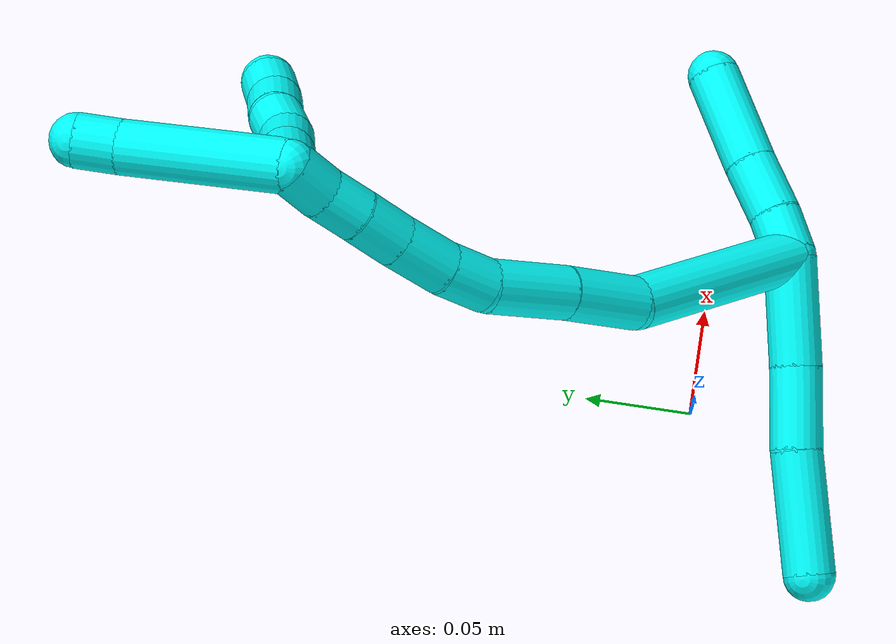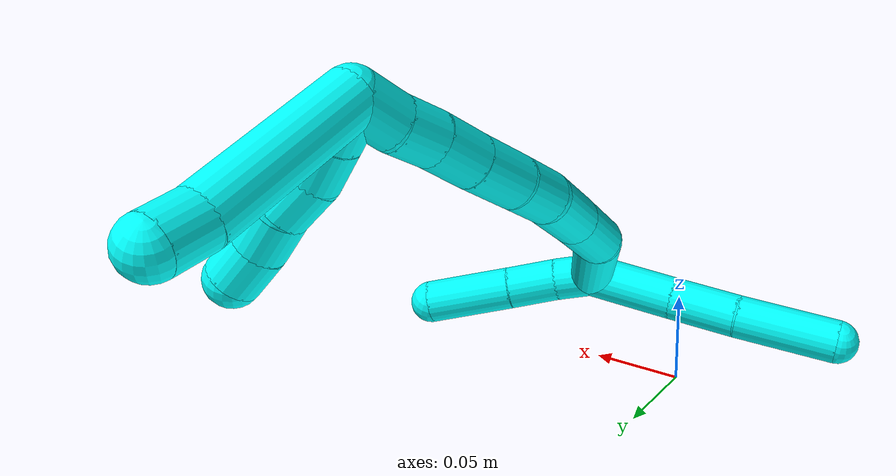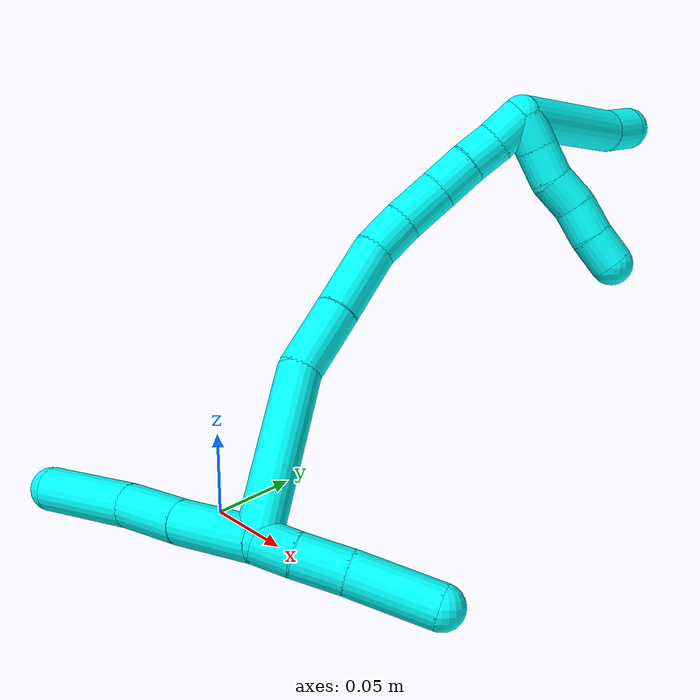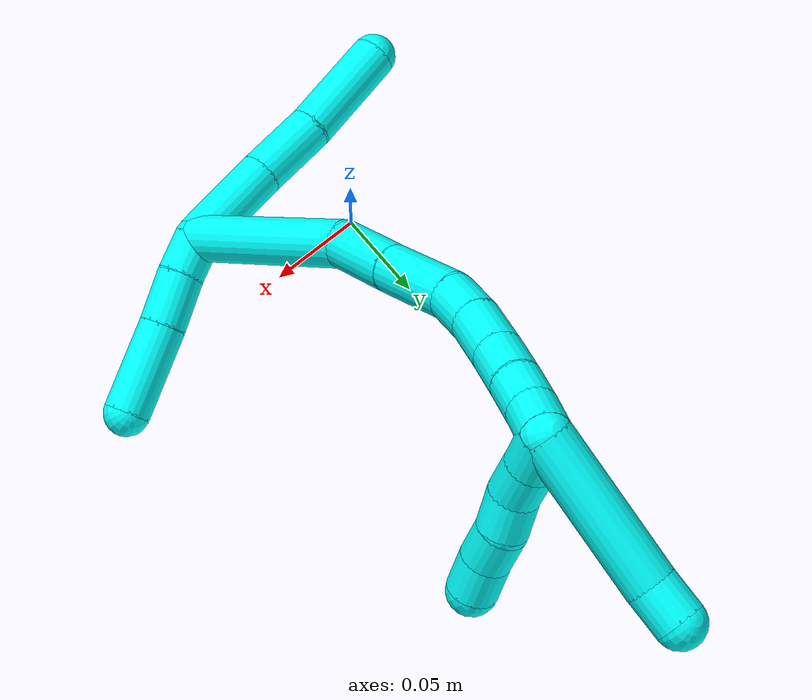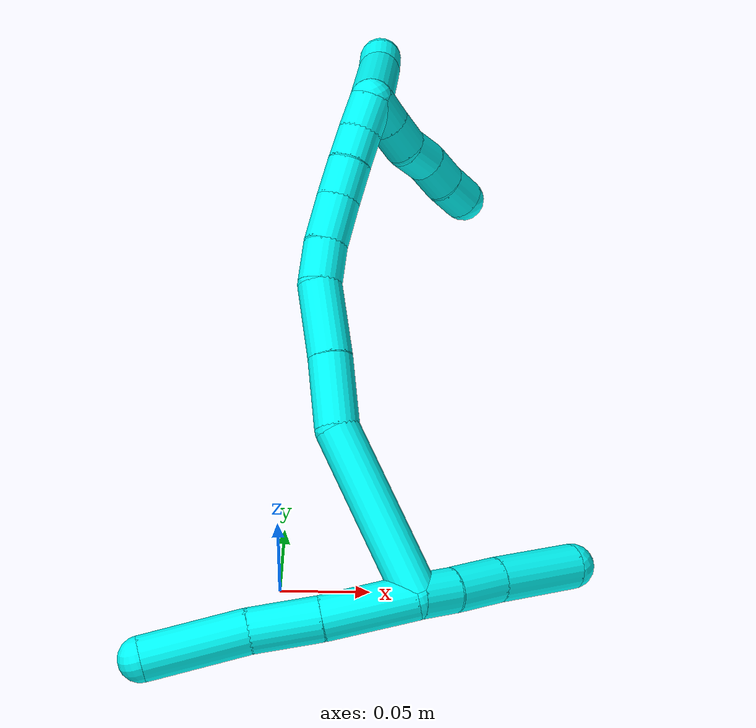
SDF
<sdf version="1.7">
 <world name="default">
  <model name="3">
   <static>0</static>
   <link name="3">
    <collision name="collision-cylinder-e_1_2_8">
     <pose>-0.025679 -0.001969 0.003676 0.491753 -1.40979 -0.420655</pose>
     <geometry><cylinder><radius>0.0125</radius><length>0.052032</length></cylinder></geometry>
     <surface>
      <friction><ode><mu>1.16</mu><mu2>1.16</mu2><slip1>0</slip1><slip2>0</slip2></ode></friction>
      <contact><ode><kp>1e+06</kp><kd>1</kd><max_vel>0</max_vel><min_depth>0.001</min_depth></ode></contact>
     </surface>
    </collision>
    <visual name="visual-cylinder-e_1_2_8">
     <pose>-0.025679 -0.001969 0.003676 0.491753 -1.40979 -0.420655</pose>
     <geometry><cylinder><radius>0.0125</radius><length>0.052032</length></cylinder></geometry>
     <material><ambient>0.003922 1 0.996078 1</ambient></material>
    </visual>
    <collision name="collision-cylinder-e_2_8_9">
     <pose>-0.070645 -0.004791 0.011083 0.224665 -1.37494 -0.184724</pose>
     <geometry><cylinder><radius>0.0125</radius><length>0.039325</length></cylinder></geometry>
     <surface>
      <friction><ode><mu>1.16</mu><mu2>1.16</mu2><slip1>0</slip1><slip2>0</slip2></ode></friction>
      <contact><ode><kp>1e+06</kp><kd>1</kd><max_vel>0</max_vel><min_depth>0.001</min_depth></ode></contact>
     </surface>
    </collision>
    <visual name="visual-cylinder-e_2_8_9">
     <pose>-0.070645 -0.004791 0.011083 0.224665 -1.37494 -0.184724</pose>
     <geometry><cylinder><radius>0.0125</radius><length>0.039325</length></cylinder></geometry>
     <material><ambient>0.003922 1 0.996078 1</ambient></material>
    </visual>
    <collision name="collision-cylinder-e_3_9_6">
     <pose>-0.118756 -0.009326 0.018731 0.754531 -1.38638 -0.635993</pose>
     <geometry><cylinder><radius>0.0125</radius><length>0.058643</length></cylinder></geometry>
     <surface>
      <friction><ode><mu>1.16</mu><mu2>1.16</mu2><slip1>0</slip1><slip2>0</slip2></ode></friction>
      <contact><ode><kp>1e+06</kp><kd>1</kd><max_vel>0</max_vel><min_depth>0.001</min_depth></ode></contact>
     </surface>
    </collision>
    <visual name="visual-cylinder-e_3_9_6">
     <pose>-0.118756 -0.009326 0.018731 0.754531 -1.38638 -0.635993</pose>
     <geometry><cylinder><radius>0.0125</radius><length>0.058643</length></cylinder></geometry>
     <material><ambient>0.003922 1 0.996078 1</ambient></material>
    </visual>
    <collision name="collision-cylinder-e_1_2_10">
     <pose>0.009214 0.004499 -0.003556 -2.23969 1.01405 -1.7076</pose>
     <geometry><cylinder><radius>0.0125</radius><length>0.021706</length></cylinder></geometry>
     <surface>
      <friction><ode><mu>1.16</mu><mu2>1.16</mu2><slip1>0</slip1><slip2>0</slip2></ode></friction>
      <contact><ode><kp>1e+06</kp><kd>1</kd><max_vel>0</max_vel><min_depth>0.001</min_depth></ode></contact>
     </surface>
    </collision>
    <visual name="visual-cylinder-e_1_2_10">
     <pose>0.009214 0.004499 -0.003556 -2.23969 1.01405 -1.7076</pose>
     <geometry><cylinder><radius>0.0125</radius><length>0.021706</length></cylinder></geometry>
     <material><ambient>0.003922 1 0.996078 1</ambient></material>
    </visual>
    <collision name="collision-cylinder-e_2_10_11">
     <pose>0.030079 0.016064 -0.011526 -2.12907 0.950077 -1.49572</pose>
     <geometry><cylinder><radius>0.0125</radius><length>0.028646</length></cylinder></geometry>
     <surface>
      <friction><ode><mu>1.16</mu><mu2>1.16</mu2><slip1>0</slip1><slip2>0</slip2></ode></friction>
      <contact><ode><kp>1e+06</kp><kd>1</kd><max_vel>0</max_vel><min_depth>0.001</min_depth></ode></contact>
     </surface>
    </collision>
    <visual name="visual-cylinder-e_2_10_11">
     <pose>0.030079 0.016064 -0.011526 -2.12907 0.950077 -1.49572</pose>
     <geometry><cylinder><radius>0.0125</radius><length>0.028646</length></cylinder></geometry>
     <material><ambient>0.003922 1 0.996078 1</ambient></material>
    </visual>
    <collision name="collision-cylinder-e_3_11_5">
     <pose>0.062173 0.034412 -0.024367 -2.21242 0.96758 -1.61806</pose>
     <geometry><cylinder><radius>0.0125</radius><length>0.049648</length></cylinder></geometry>
     <surface>
      <friction><ode><mu>1.16</mu><mu2>1.16</mu2><slip1>0</slip1><slip2>0</slip2></ode></friction>
      <contact><ode><kp>1e+06</kp><kd>1</kd><max_vel>0</max_vel><min_depth>0.001</min_depth></ode></contact>
     </surface>
    </collision>
    <visual name="visual-cylinder-e_3_11_5">
     <pose>0.062173 0.034412 -0.024367 -2.21242 0.96758 -1.61806</pose>
     <geometry><cylinder><radius>0.0125</radius><length>0.049648</length></cylinder></geometry>
     <material><ambient>0.003922 1 0.996078 1</ambient></material>
    </visual>
    <collision name="collision-cylinder-e_1_2_12">
     <pose>-0.006423 0.024094 0.043623 -0.504615 -0.128187 0.033089</pose>
     <geometry><cylinder><radius>0.0125</radius><length>0.100494</length></cylinder></geometry>
     <surface>
      <friction><ode><mu>1.16</mu><mu2>1.16</mu2><slip1>0</slip1><slip2>0</slip2></ode></friction>
      <contact><ode><kp>1e+06</kp><kd>1</kd><max_vel>0</max_vel><min_depth>0.001</min_depth></ode></contact>
     </surface>
    </collision>
    <visual name="visual-cylinder-e_1_2_12">
     <pose>-0.006423 0.024094 0.043623 -0.504615 -0.128187 0.033089</pose>
     <geometry><cylinder><radius>0.0125</radius><length>0.100494</length></cylinder></geometry>
     <material><ambient>0.003922 1 0.996078 1</ambient></material>
    </visual>
    <collision name="collision-cylinder-e_2_12_13">
     <pose>-0.008764 0.059503 0.103603 -0.605213 0.202464 -0.063404</pose>
     <geometry><cylinder><radius>0.0125</radius><length>0.040608</length></cylinder></geometry>
     <surface>
      <friction><ode><mu>1.16</mu><mu2>1.16</mu2><slip1>0</slip1><slip2>0</slip2></ode></friction>
      <contact><ode><kp>1e+06</kp><kd>1</kd><max_vel>0</max_vel><min_depth>0.001</min_depth></ode></contact>
     </surface>
    </collision>
    <visual name="visual-cylinder-e_2_12_13">
     <pose>-0.008764 0.059503 0.103603 -0.605213 0.202464 -0.063404</pose>
     <geometry><cylinder><radius>0.0125</radius><length>0.040608</length></cylinder></geometry>
     <material><ambient>0.003922 1 0.996078 1</ambient></material>
    </visual>
    <collision name="collision-cylinder-e_3_13_14">
     <pose>-0.001374 0.083444 0.137129 -0.634045 0.153924 -0.05059</pose>
     <geometry><cylinder><radius>0.0125</radius><length>0.043134</length></cylinder></geometry>
     <surface>
      <friction><ode><mu>1.16</mu><mu2>1.16</mu2><slip1>0</slip1><slip2>0</slip2></ode></friction>
      <contact><ode><kp>1e+06</kp><kd>1</kd><max_vel>0</max_vel><min_depth>0.001</min_depth></ode></contact>
     </surface>
    </collision>
    <visual name="visual-cylinder-e_3_13_14">
     <pose>-0.001374 0.083444 0.137129 -0.634045 0.153924 -0.05059</pose>
     <geometry><cylinder><radius>0.0125</radius><length>0.043134</length></cylinder></geometry>
     <material><ambient>0.003922 1 0.996078 1</ambient></material>
    </visual>
    <collision name="collision-cylinder-e_4_14_15">
     <pose>0.00679 0.103128 0.162687 -0.699561 0.417076 -0.15408</pose>
     <geometry><cylinder><radius>0.0125</radius><length>0.023982</length></cylinder></geometry>
     <surface>
      <friction><ode><mu>1.16</mu><mu2>1.16</mu2><slip1>0</slip1><slip2>0</slip2></ode></friction>
      <contact><ode><kp>1e+06</kp><kd>1</kd><max_vel>0</max_vel><min_depth>0.001</min_depth></ode></contact>
     </surface>
    </collision>
    <visual name="visual-cylinder-e_4_14_15">
     <pose>0.00679 0.103128 0.162687 -0.699561 0.417076 -0.15408</pose>
     <geometry><cylinder><radius>0.0125</radius><length>0.023982</length></cylinder></geometry>
     <material><ambient>0.003922 1 0.996078 1</ambient></material>
    </visual>
    <collision name="collision-cylinder-e_5_15_16">
     <pose>0.018716 0.11779 0.180039 -0.703408 0.541495 -0.203009</pose>
     <geometry><cylinder><radius>0.0125</radius><length>0.027432</length></cylinder></geometry>
     <surface>
      <friction><ode><mu>1.16</mu><mu2>1.16</mu2><slip1>0</slip1><slip2>0</slip2></ode></friction>
      <contact><ode><kp>1e+06</kp><kd>1</kd><max_vel>0</max_vel><min_depth>0.001</min_depth></ode></contact>
     </surface>
    </collision>
    <visual name="visual-cylinder-e_5_15_16">
     <pose>0.018716 0.11779 0.180039 -0.703408 0.541495 -0.203009</pose>
     <geometry><cylinder><radius>0.0125</radius><length>0.027432</length></cylinder></geometry>
     <material><ambient>0.003922 1 0.996078 1</ambient></material>
    </visual>
    <collision name="collision-cylinder-e_6_16_17">
     <pose>0.032053 0.131369 0.196615 -0.665633 0.574656 -0.203591</pose>
     <geometry><cylinder><radius>0.0125</radius><length>0.023059</length></cylinder></geometry>
     <surface>
      <friction><ode><mu>1.16</mu><mu2>1.16</mu2><slip1>0</slip1><slip2>0</slip2></ode></friction>
      <contact><ode><kp>1e+06</kp><kd>1</kd><max_vel>0</max_vel><min_depth>0.001</min_depth></ode></contact>
     </surface>
    </collision>
    <visual name="visual-cylinder-e_6_16_17">
     <pose>0.032053 0.131369 0.196615 -0.665633 0.574656 -0.203591</pose>
     <geometry><cylinder><radius>0.0125</radius><length>0.023059</length></cylinder></geometry>
     <material><ambient>0.003922 1 0.996078 1</ambient></material>
    </visual>
    <collision name="collision-cylinder-e_7_17_18">
     <pose>0.043795 0.143127 0.210394 -0.753169 0.574762 -0.232709</pose>
     <geometry><cylinder><radius>0.0125</radius><length>0.020144</length></cylinder></geometry>
     <surface>
      <friction><ode><mu>1.16</mu><mu2>1.16</mu2><slip1>0</slip1><slip2>0</slip2></ode></friction>
      <contact><ode><kp>1e+06</kp><kd>1</kd><max_vel>0</max_vel><min_depth>0.001</min_depth></ode></contact>
     </surface>
    </collision>
    <visual name="visual-cylinder-e_7_17_18">
     <pose>0.043795 0.143127 0.210394 -0.753169 0.574762 -0.232709</pose>
     <geometry><cylinder><radius>0.0125</radius><length>0.020144</length></cylinder></geometry>
     <material><ambient>0.003922 1 0.996078 1</ambient></material>
    </visual>
    <collision name="collision-cylinder-e_8_18_1">
     <pose>0.055593 0.153572 0.223638 -0.582598 0.64095 -0.198383</pose>
     <geometry><cylinder><radius>0.0125</radius><length>0.021148</length></cylinder></geometry>
     <surface>
      <friction><ode><mu>1.16</mu><mu2>1.16</mu2><slip1>0</slip1><slip2>0</slip2></ode></friction>
      <contact><ode><kp>1e+06</kp><kd>1</kd><max_vel>0</max_vel><min_depth>0.001</min_depth></ode></contact>
     </surface>
    </collision>
    <visual name="visual-cylinder-e_8_18_1">
     <pose>0.055593 0.153572 0.223638 -0.582598 0.64095 -0.198383</pose>
     <geometry><cylinder><radius>0.0125</radius><length>0.021148</length></cylinder></geometry>
     <material><ambient>0.003922 1 0.996078 1</ambient></material>
    </visual>
    <collision name="collision-cylinder-e_1_1_19">
     <pose>0.064039 0.162204 0.221786 -2.7233 0.213968 -0.936844</pose>
     <geometry><cylinder><radius>0.0125</radius><length>0.02</length></cylinder></geometry>
     <surface>
      <friction><ode><mu>1.16</mu><mu2>1.16</mu2><slip1>0</slip1><slip2>0</slip2></ode></friction>
      <contact><ode><kp>1e+06</kp><kd>1</kd><max_vel>0</max_vel><min_depth>0.001</min_depth></ode></contact>
     </surface>
    </collision>
    <visual name="visual-cylinder-e_1_1_19">
     <pose>0.064039 0.162204 0.221786 -2.7233 0.213968 -0.936844</pose>
     <geometry><cylinder><radius>0.0125</radius><length>0.02</length></cylinder></geometry>
     <material><ambient>0.003922 1 0.996078 1</ambient></material>
    </visual>
    <collision name="collision-cylinder-e_2_19_20">
     <pose>0.068615 0.169861 0.20389 -2.75144 0.247776 -1.1247</pose>
     <geometry><cylinder><radius>0.0125</radius><length>0.02</length></cylinder></geometry>
     <surface>
      <friction><ode><mu>1.16</mu><mu2>1.16</mu2><slip1>0</slip1><slip2>0</slip2></ode></friction>
      <contact><ode><kp>1e+06</kp><kd>1</kd><max_vel>0</max_vel><min_depth>0.001</min_depth></ode></contact>
     </surface>
    </collision>
    <visual name="visual-cylinder-e_2_19_20">
     <pose>0.068615 0.169861 0.20389 -2.75144 0.247776 -1.1247</pose>
     <geometry><cylinder><radius>0.0125</radius><length>0.02</length></cylinder></geometry>
     <material><ambient>0.003922 1 0.996078 1</ambient></material>
    </visual>
    <collision name="collision-cylinder-e_3_20_21">
     <pose>0.07518 0.178912 0.187554 -2.51249 0.423835 -1.16852</pose>
     <geometry><cylinder><radius>0.0125</radius><length>0.02</length></cylinder></geometry>
     <surface>
      <friction><ode><mu>1.16</mu><mu2>1.16</mu2><slip1>0</slip1><slip2>0</slip2></ode></friction>
      <contact><ode><kp>1e+06</kp><kd>1</kd><max_vel>0</max_vel><min_depth>0.001</min_depth></ode></contact>
     </surface>
    </collision>
    <visual name="visual-cylinder-e_3_20_21">
     <pose>0.07518 0.178912 0.187554 -2.51249 0.423835 -1.16852</pose>
     <geometry><cylinder><radius>0.0125</radius><length>0.02</length></cylinder></geometry>
     <material><ambient>0.003922 1 0.996078 1</ambient></material>
    </visual>
    <collision name="collision-cylinder-e_4_21_22">
     <pose>0.08232 0.188127 0.171466 -2.72551 0.307589 -1.26682</pose>
     <geometry><cylinder><radius>0.0125</radius><length>0.02</length></cylinder></geometry>
     <surface>
      <friction><ode><mu>1.16</mu><mu2>1.16</mu2><slip1>0</slip1><slip2>0</slip2></ode></friction>
      <contact><ode><kp>1e+06</kp><kd>1</kd><max_vel>0</max_vel><min_depth>0.001</min_depth></ode></contact>
     </surface>
    </collision>
    <visual name="visual-cylinder-e_4_21_22">
     <pose>0.08232 0.188127 0.171466 -2.72551 0.307589 -1.26682</pose>
     <geometry><cylinder><radius>0.0125</radius><length>0.02</length></cylinder></geometry>
     <material><ambient>0.003922 1 0.996078 1</ambient></material>
    </visual>
    <collision name="collision-cylinder-e_5_22_4">
     <pose>0.0891 0.196674 0.154756 -2.61056 0.384634 -1.24284</pose>
     <geometry><cylinder><radius>0.0125</radius><length>0.02</length></cylinder></geometry>
     <surface>
      <friction><ode><mu>1.16</mu><mu2>1.16</mu2><slip1>0</slip1><slip2>0</slip2></ode></friction>
      <contact><ode><kp>1e+06</kp><kd>1</kd><max_vel>0</max_vel><min_depth>0.001</min_depth></ode></contact>
     </surface>
    </collision>
    <visual name="visual-cylinder-e_5_22_4">
     <pose>0.0891 0.196674 0.154756 -2.61056 0.384634 -1.24284</pose>
     <geometry><cylinder><radius>0.0125</radius><length>0.02</length></cylinder></geometry>
     <material><ambient>0.003922 1 0.996078 1</ambient></material>
    </visual>
    <collision name="collision-cylinder-e_1_1_23">
     <pose>0.066067 0.197701 0.230826 -1.56799 0.104792 -0.104499</pose>
     <geometry><cylinder><radius>0.0125</radius><length>0.079367</length></cylinder></geometry>
     <surface>
      <friction><ode><mu>1.16</mu><mu2>1.16</mu2><slip1>0</slip1><slip2>0</slip2></ode></friction>
      <contact><ode><kp>1e+06</kp><kd>1</kd><max_vel>0</max_vel><min_depth>0.001</min_depth></ode></contact>
     </surface>
    </collision>
    <visual name="visual-cylinder-e_1_1_23">
     <pose>0.066067 0.197701 0.230826 -1.56799 0.104792 -0.104499</pose>
     <geometry><cylinder><radius>0.0125</radius><length>0.079367</length></cylinder></geometry>
     <material><ambient>0.003922 1 0.996078 1</ambient></material>
    </visual>
    <collision name="collision-cylinder-e_2_23_3">
     <pose>0.071847 0.247185 0.232779 -1.38892 0.158656 -0.132223</pose>
     <geometry><cylinder><radius>0.0125</radius><length>0.020633</length></cylinder></geometry>
     <surface>
      <friction><ode><mu>1.16</mu><mu2>1.16</mu2><slip1>0</slip1><slip2>0</slip2></ode></friction>
      <contact><ode><kp>1e+06</kp><kd>1</kd><max_vel>0</max_vel><min_depth>0.001</min_depth></ode></contact>
     </surface>
    </collision>
    <visual name="visual-cylinder-e_2_23_3">
     <pose>0.071847 0.247185 0.232779 -1.38892 0.158656 -0.132223</pose>
     <geometry><cylinder><radius>0.0125</radius><length>0.020633</length></cylinder></geometry>
     <material><ambient>0.003922 1 0.996078 1</ambient></material>
    </visual>
    <collision name="collision-sphere-3">
     <pose>0.073477 0.257204 0.234622 0 -0 0</pose>
     <geometry><sphere><radius>0.0125</radius></sphere></geometry>
     <surface>
      <friction><ode><mu>1.16</mu><mu2>1.16</mu2><slip1>0</slip1><slip2>0</slip2></ode></friction>
      <contact><ode><kp>1e+06</kp><kd>1</kd><max_vel>0</max_vel><min_depth>0.001</min_depth></ode></contact>
     </surface>
    </collision>
    <visual name="visual-sphere-3">
     <pose>0.073477 0.257204 0.234622 0 -0 0</pose>
     <geometry><sphere><radius>0.0125</radius></sphere></geometry>
     <material><ambient>0.003922 1 0.996078 1</ambient></material>
    </visual>
    <collision name="collision-sphere-23">
     <pose>0.070218 0.237166 0.230936 0 -0 0</pose>
     <geometry><sphere><radius>0.0125</radius></sphere></geometry>
     <surface>
      <friction><ode><mu>1.16</mu><mu2>1.16</mu2><slip1>0</slip1><slip2>0</slip2></ode></friction>
      <contact><ode><kp>1e+06</kp><kd>1</kd><max_vel>0</max_vel><min_depth>0.001</min_depth></ode></contact>
     </surface>
    </collision>
    <visual name="visual-sphere-23">
     <pose>0.070218 0.237166 0.230936 0 -0 0</pose>
     <geometry><sphere><radius>0.0125</radius></sphere></geometry>
     <material><ambient>0.003922 1 0.996078 1</ambient></material>
    </visual>
    <collision name="collision-sphere-4">
     <pose>0.092852 0.201368 0.146763 0 -0 0</pose>
     <geometry><sphere><radius>0.0125</radius></sphere></geometry>
     <surface>
      <friction><ode><mu>1.16</mu><mu2>1.16</mu2><slip1>0</slip1><slip2>0</slip2></ode></friction>
      <contact><ode><kp>1e+06</kp><kd>1</kd><max_vel>0</max_vel><min_depth>0.001</min_depth></ode></contact>
     </surface>
    </collision>
    <visual name="visual-sphere-4">
     <pose>0.092852 0.201368 0.146763 0 -0 0</pose>
     <geometry><sphere><radius>0.0125</radius></sphere></geometry>
     <material><ambient>0.003922 1 0.996078 1</ambient></material>
    </visual>
    <collision name="collision-sphere-22">
     <pose>0.085348 0.191979 0.162749 0 -0 0</pose>
     <geometry><sphere><radius>0.0125</radius></sphere></geometry>
     <surface>
      <friction><ode><mu>1.16</mu><mu2>1.16</mu2><slip1>0</slip1><slip2>0</slip2></ode></friction>
      <contact><ode><kp>1e+06</kp><kd>1</kd><max_vel>0</max_vel><min_depth>0.001</min_depth></ode></contact>
     </surface>
    </collision>
    <visual name="visual-sphere-22">
     <pose>0.085348 0.191979 0.162749 0 -0 0</pose>
     <geometry><sphere><radius>0.0125</radius></sphere></geometry>
     <material><ambient>0.003922 1 0.996078 1</ambient></material>
    </visual>
    <collision name="collision-sphere-21">
     <pose>0.079293 0.184275 0.180184 0 -0 0</pose>
     <geometry><sphere><radius>0.0125</radius></sphere></geometry>
     <surface>
      <friction><ode><mu>1.16</mu><mu2>1.16</mu2><slip1>0</slip1><slip2>0</slip2></ode></friction>
      <contact><ode><kp>1e+06</kp><kd>1</kd><max_vel>0</max_vel><min_depth>0.001</min_depth></ode></contact>
     </surface>
    </collision>
    <visual name="visual-sphere-21">
     <pose>0.079293 0.184275 0.180184 0 -0 0</pose>
     <geometry><sphere><radius>0.0125</radius></sphere></geometry>
     <material><ambient>0.003922 1 0.996078 1</ambient></material>
    </visual>
    <collision name="collision-sphere-20">
     <pose>0.071067 0.173548 0.194924 0 -0 0</pose>
     <geometry><sphere><radius>0.0125</radius></sphere></geometry>
     <surface>
      <friction><ode><mu>1.16</mu><mu2>1.16</mu2><slip1>0</slip1><slip2>0</slip2></ode></friction>
      <contact><ode><kp>1e+06</kp><kd>1</kd><max_vel>0</max_vel><min_depth>0.001</min_depth></ode></contact>
     </surface>
    </collision>
    <visual name="visual-sphere-20">
     <pose>0.071067 0.173548 0.194924 0 -0 0</pose>
     <geometry><sphere><radius>0.0125</radius></sphere></geometry>
     <material><ambient>0.003922 1 0.996078 1</ambient></material>
    </visual>
    <collision name="collision-sphere-11">
     <pose>0.04173 0.02313 -0.015938 0 -0 0</pose>
     <geometry><sphere><radius>0.0125</radius></sphere></geometry>
     <surface>
      <friction><ode><mu>1.16</mu><mu2>1.16</mu2><slip1>0</slip1><slip2>0</slip2></ode></friction>
      <contact><ode><kp>1e+06</kp><kd>1</kd><max_vel>0</max_vel><min_depth>0.001</min_depth></ode></contact>
     </surface>
    </collision>
    <visual name="visual-sphere-11">
     <pose>0.04173 0.02313 -0.015938 0 -0 0</pose>
     <geometry><sphere><radius>0.0125</radius></sphere></geometry>
     <material><ambient>0.003922 1 0.996078 1</ambient></material>
    </visual>
    <collision name="collision-sphere-10">
     <pose>0.018428 0.008998 -0.007113 0 -0 0</pose>
     <geometry><sphere><radius>0.0125</radius></sphere></geometry>
     <surface>
      <friction><ode><mu>1.16</mu><mu2>1.16</mu2><slip1>0</slip1><slip2>0</slip2></ode></friction>
      <contact><ode><kp>1e+06</kp><kd>1</kd><max_vel>0</max_vel><min_depth>0.001</min_depth></ode></contact>
     </surface>
    </collision>
    <visual name="visual-sphere-10">
     <pose>0.018428 0.008998 -0.007113 0 -0 0</pose>
     <geometry><sphere><radius>0.0125</radius></sphere></geometry>
     <material><ambient>0.003922 1 0.996078 1</ambient></material>
    </visual>
    <collision name="collision-sphere-6">
     <pose>-0.147581 -0.013009 0.022648 0 -0 0</pose>
     <geometry><sphere><radius>0.0125</radius></sphere></geometry>
     <surface>
      <friction><ode><mu>1.16</mu><mu2>1.16</mu2><slip1>0</slip1><slip2>0</slip2></ode></friction>
      <contact><ode><kp>1e+06</kp><kd>1</kd><max_vel>0</max_vel><min_depth>0.001</min_depth></ode></contact>
     </surface>
    </collision>
    <visual name="visual-sphere-6">
     <pose>-0.147581 -0.013009 0.022648 0 -0 0</pose>
     <geometry><sphere><radius>0.0125</radius></sphere></geometry>
     <material><ambient>0.003922 1 0.996078 1</ambient></material>
    </visual>
    <collision name="collision-sphere-9">
     <pose>-0.089932 -0.005643 0.014813 0 -0 0</pose>
     <geometry><sphere><radius>0.0125</radius></sphere></geometry>
     <surface>
      <friction><ode><mu>1.16</mu><mu2>1.16</mu2><slip1>0</slip1><slip2>0</slip2></ode></friction>
      <contact><ode><kp>1e+06</kp><kd>1</kd><max_vel>0</max_vel><min_depth>0.001</min_depth></ode></contact>
     </surface>
    </collision>
    <visual name="visual-sphere-9">
     <pose>-0.089932 -0.005643 0.014813 0 -0 0</pose>
     <geometry><sphere><radius>0.0125</radius></sphere></geometry>
     <material><ambient>0.003922 1 0.996078 1</ambient></material>
    </visual>
    <collision name="collision-sphere-2">
     <geometry><sphere><radius>0.0125</radius></sphere></geometry>
     <surface>
      <friction><ode><mu>1.16</mu><mu2>1.16</mu2><slip1>0</slip1><slip2>0</slip2></ode></friction>
      <contact><ode><kp>1e+06</kp><kd>1</kd><max_vel>0</max_vel><min_depth>0.001</min_depth></ode></contact>
     </surface>
    </collision>
    <visual name="visual-sphere-2">
     <geometry><sphere><radius>0.0125</radius></sphere></geometry>
     <material><ambient>0.003922 1 0.996078 1</ambient></material>
    </visual>
    <collision name="collision-sphere-19">
     <pose>0.066163 0.166174 0.212856 0 -0 0</pose>
     <geometry><sphere><radius>0.0125</radius></sphere></geometry>
     <surface>
      <friction><ode><mu>1.16</mu><mu2>1.16</mu2><slip1>0</slip1><slip2>0</slip2></ode></friction>
      <contact><ode><kp>1e+06</kp><kd>1</kd><max_vel>0</max_vel><min_depth>0.001</min_depth></ode></contact>
     </surface>
    </collision>
    <visual name="visual-sphere-19">
     <pose>0.066163 0.166174 0.212856 0 -0 0</pose>
     <geometry><sphere><radius>0.0125</radius></sphere></geometry>
     <material><ambient>0.003922 1 0.996078 1</ambient></material>
    </visual>
    <collision name="collision-sphere-8">
     <pose>-0.051359 -0.003938 0.007353 0 -0 0</pose>
     <geometry><sphere><radius>0.0125</radius></sphere></geometry>
     <surface>
      <friction><ode><mu>1.16</mu><mu2>1.16</mu2><slip1>0</slip1><slip2>0</slip2></ode></friction>
      <contact><ode><kp>1e+06</kp><kd>1</kd><max_vel>0</max_vel><min_depth>0.001</min_depth></ode></contact>
     </surface>
    </collision>
    <visual name="visual-sphere-8">
     <pose>-0.051359 -0.003938 0.007353 0 -0 0</pose>
     <geometry><sphere><radius>0.0125</radius></sphere></geometry>
     <material><ambient>0.003922 1 0.996078 1</ambient></material>
    </visual>
    <collision name="collision-sphere-5">
     <pose>0.082616 0.045693 -0.032795 0 -0 0</pose>
     <geometry><sphere><radius>0.0125</radius></sphere></geometry>
     <surface>
      <friction><ode><mu>1.16</mu><mu2>1.16</mu2><slip1>0</slip1><slip2>0</slip2></ode></friction>
      <contact><ode><kp>1e+06</kp><kd>1</kd><max_vel>0</max_vel><min_depth>0.001</min_depth></ode></contact>
     </surface>
    </collision>
    <visual name="visual-sphere-5">
     <pose>0.082616 0.045693 -0.032795 0 -0 0</pose>
     <geometry><sphere><radius>0.0125</radius></sphere></geometry>
     <material><ambient>0.003922 1 0.996078 1</ambient></material>
    </visual>
    <collision name="collision-sphere-12">
     <pose>-0.012847 0.048187 0.087246 0 -0 0</pose>
     <geometry><sphere><radius>0.0125</radius></sphere></geometry>
     <surface>
      <friction><ode><mu>1.16</mu><mu2>1.16</mu2><slip1>0</slip1><slip2>0</slip2></ode></friction>
      <contact><ode><kp>1e+06</kp><kd>1</kd><max_vel>0</max_vel><min_depth>0.001</min_depth></ode></contact>
     </surface>
    </collision>
    <visual name="visual-sphere-12">
     <pose>-0.012847 0.048187 0.087246 0 -0 0</pose>
     <geometry><sphere><radius>0.0125</radius></sphere></geometry>
     <material><ambient>0.003922 1 0.996078 1</ambient></material>
    </visual>
    <collision name="collision-sphere-13">
     <pose>-0.004681 0.070819 0.11996 0 -0 0</pose>
     <geometry><sphere><radius>0.0125</radius></sphere></geometry>
     <surface>
      <friction><ode><mu>1.16</mu><mu2>1.16</mu2><slip1>0</slip1><slip2>0</slip2></ode></friction>
      <contact><ode><kp>1e+06</kp><kd>1</kd><max_vel>0</max_vel><min_depth>0.001</min_depth></ode></contact>
     </surface>
    </collision>
    <visual name="visual-sphere-13">
     <pose>-0.004681 0.070819 0.11996 0 -0 0</pose>
     <geometry><sphere><radius>0.0125</radius></sphere></geometry>
     <material><ambient>0.003922 1 0.996078 1</ambient></material>
    </visual>
    <collision name="collision-sphere-14">
     <pose>0.001932 0.096069 0.154299 0 -0 0</pose>
     <geometry><sphere><radius>0.0125</radius></sphere></geometry>
     <surface>
      <friction><ode><mu>1.16</mu><mu2>1.16</mu2><slip1>0</slip1><slip2>0</slip2></ode></friction>
      <contact><ode><kp>1e+06</kp><kd>1</kd><max_vel>0</max_vel><min_depth>0.001</min_depth></ode></contact>
     </surface>
    </collision>
    <visual name="visual-sphere-14">
     <pose>0.001932 0.096069 0.154299 0 -0 0</pose>
     <geometry><sphere><radius>0.0125</radius></sphere></geometry>
     <material><ambient>0.003922 1 0.996078 1</ambient></material>
    </visual>
    <collision name="collision-sphere-15">
     <pose>0.011647 0.110187 0.171075 0 -0 0</pose>
     <geometry><sphere><radius>0.0125</radius></sphere></geometry>
     <surface>
      <friction><ode><mu>1.16</mu><mu2>1.16</mu2><slip1>0</slip1><slip2>0</slip2></ode></friction>
      <contact><ode><kp>1e+06</kp><kd>1</kd><max_vel>0</max_vel><min_depth>0.001</min_depth></ode></contact>
     </surface>
    </collision>
    <visual name="visual-sphere-15">
     <pose>0.011647 0.110187 0.171075 0 -0 0</pose>
     <geometry><sphere><radius>0.0125</radius></sphere></geometry>
     <material><ambient>0.003922 1 0.996078 1</ambient></material>
    </visual>
    <collision name="collision-sphere-16">
     <pose>0.025786 0.125392 0.189003 0 -0 0</pose>
     <geometry><sphere><radius>0.0125</radius></sphere></geometry>
     <surface>
      <friction><ode><mu>1.16</mu><mu2>1.16</mu2><slip1>0</slip1><slip2>0</slip2></ode></friction>
      <contact><ode><kp>1e+06</kp><kd>1</kd><max_vel>0</max_vel><min_depth>0.001</min_depth></ode></contact>
     </surface>
    </collision>
    <visual name="visual-sphere-16">
     <pose>0.025786 0.125392 0.189003 0 -0 0</pose>
     <geometry><sphere><radius>0.0125</radius></sphere></geometry>
     <material><ambient>0.003922 1 0.996078 1</ambient></material>
    </visual>
    <collision name="collision-sphere-17">
     <pose>0.038319 0.137345 0.204227 0 -0 0</pose>
     <geometry><sphere><radius>0.0125</radius></sphere></geometry>
     <surface>
      <friction><ode><mu>1.16</mu><mu2>1.16</mu2><slip1>0</slip1><slip2>0</slip2></ode></friction>
      <contact><ode><kp>1e+06</kp><kd>1</kd><max_vel>0</max_vel><min_depth>0.001</min_depth></ode></contact>
     </surface>
    </collision>
    <visual name="visual-sphere-17">
     <pose>0.038319 0.137345 0.204227 0 -0 0</pose>
     <geometry><sphere><radius>0.0125</radius></sphere></geometry>
     <material><ambient>0.003922 1 0.996078 1</ambient></material>
    </visual>
    <collision name="collision-sphere-18">
     <pose>0.04927 0.148909 0.216561 0 -0 0</pose>
     <geometry><sphere><radius>0.0125</radius></sphere></geometry>
     <surface>
      <friction><ode><mu>1.16</mu><mu2>1.16</mu2><slip1>0</slip1><slip2>0</slip2></ode></friction>
      <contact><ode><kp>1e+06</kp><kd>1</kd><max_vel>0</max_vel><min_depth>0.001</min_depth></ode></contact>
     </surface>
    </collision>
    <visual name="visual-sphere-18">
     <pose>0.04927 0.148909 0.216561 0 -0 0</pose>
     <geometry><sphere><radius>0.0125</radius></sphere></geometry>
     <material><ambient>0.003922 1 0.996078 1</ambient></material>
    </visual>
    <collision name="collision-sphere-1">
     <pose>0.061916 0.158235 0.230715 0 -0 0</pose>
     <geometry><sphere><radius>0.0125</radius></sphere></geometry>
     <surface>
      <friction><ode><mu>1.16</mu><mu2>1.16</mu2><slip1>0</slip1><slip2>0</slip2></ode></friction>
      <contact><ode><kp>1e+06</kp><kd>1</kd><max_vel>0</max_vel><min_depth>0.001</min_depth></ode></contact>
     </surface>
    </collision>
    <visual name="visual-sphere-1">
     <pose>0.061916 0.158235 0.230715 0 -0 0</pose>
     <geometry><sphere><radius>0.0125</radius></sphere></geometry>
     <material><ambient>0.003922 1 0.996078 1</ambient></material>
    </visual>
    <inertial>
     <pose>0.013058 0.084582 0.105157 0 -0 0</pose>
     <mass>0.75</mass>
     <inertia>
      <ixx>0.000145</ixx>
      <ixy>0</ixy>
      <ixz>0</ixz>
      <iyy>0.000151</iyy>
      <iyz>0</iyz>
      <izz>-7.8e-05</izz>
     </inertia>
    </inertial>
   </link>
   <pose>0.07585 -0.035288 0.031272 -0.359713 -0.30534 0.176273</pose>
  </model>
 </world>
</sdf>
